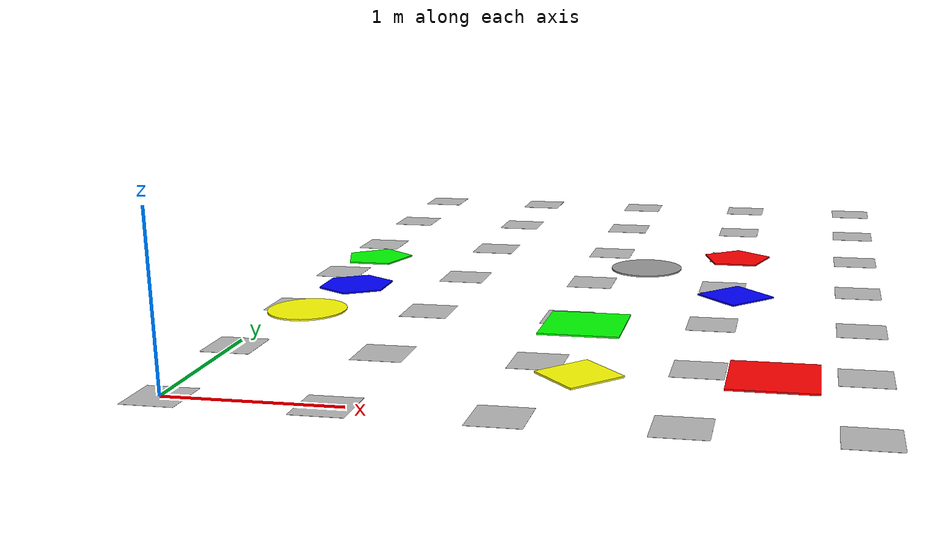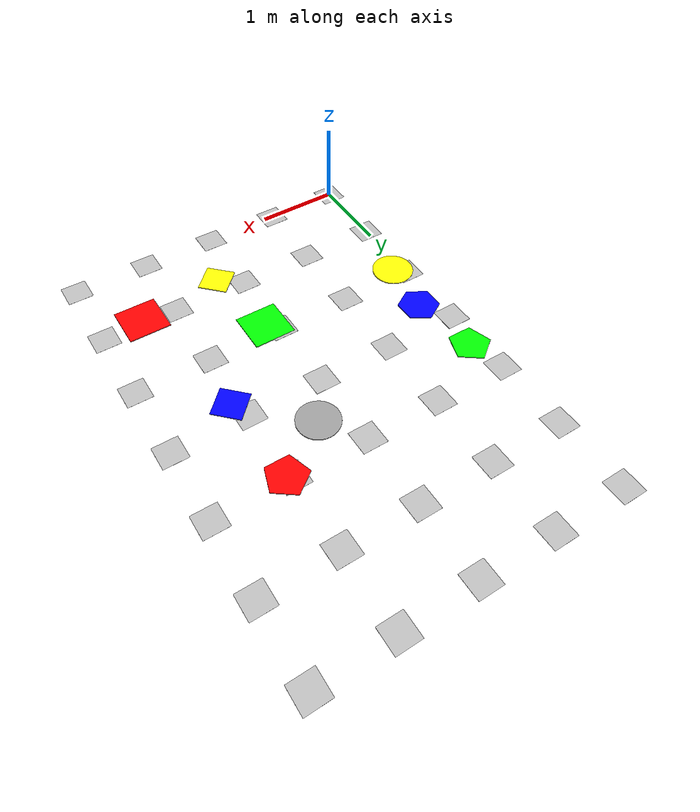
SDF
<sdf version="1.5">
 <world name="default">
  <include><uri>model://sun</uri></include>
  <include><uri>model://my_aruco</uri></include>
  <include><uri>model://Blue_hexagon</uri><pose>0.22 2.35 0.0 0 0 0</pose></include>
  <include><uri>model://Blue_rhombus</uri><pose>2.8 2.48 0.0 0 0 0</pose></include>
  <include><uri>model://Green_pentagon</uri><pose>0.1 3.16 0.0 0 0 0</pose></include>
  <include><uri>model://green_square</uri><pose>1.93 1.67 0.0 0 0 0</pose></include>
  <include><uri>model://Red_pentagon</uri><pose>2.74 3.56 0.0 0 0 0</pose></include>
  <include><uri>model://red_square</uri><pose>3.11 0.84 0.0 0 0 0</pose></include>
  <include><uri>model://White_circle</uri><pose>2.12 3.15 0.0 0 0 0</pose></include>
  <include><uri>model://Yellow_circle</uri><pose>0.13 1.69 0.0 0 0 0</pose></include>
  <include><uri>model://Yellow_rhombus</uri><pose>2.07 0.7 0.0 0 0 0</pose></include>
  <scene>
   <ambient>0.8 0.8 0.8 1</ambient>
   <background>0.8 0.9 1 1</background>
   <shadows>false</shadows>
   <grid>false</grid>
   <origin_visual>false</origin_visual>
  </scene>
  <physics name="default_physics" default="0" type="ode">
   <gravity>0 0 -9.8066</gravity>
   <ode>
    <solver>
     <type>quick</type>
     <iters>10</iters>
     <sor>1.3</sor>
     <use_dynamic_moi_rescaling>0</use_dynamic_moi_rescaling>
    </solver>
    <constraints>
     <cfm>0</cfm>
     <erp>0.2</erp>
     <contact_max_correcting_vel>100</contact_max_correcting_vel>
     <contact_surface_layer>0.001</contact_surface_layer>
    </constraints>
   </ode>
   <max_step_size>0.004</max_step_size>
   <real_time_factor>1</real_time_factor>
   <real_time_update_rate>250</real_time_update_rate>
   <magnetic_field>6.0e-6 2.3e-5 -4.2e-5</magnetic_field>
  </physics>
 </world>
</sdf>

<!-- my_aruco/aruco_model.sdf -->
<sdf version="1.5">
    <model name="aruco_2_99">
        <static>true</static>
        <link name="aruco_2_99_link">

<visual name="visual_marker_2_0">
    <pose>0.0 0.0 0.0 0.0 0.0 1.57079632679</pose>
    <cast_shadows>false</cast_shadows>
    <geometry>
        <box>
            <size>0.3 0.3 1e-3</size>
        </box>
    </geometry>
    <material>
        <script>
            <uri>model://my_aruco/materials/scripts</uri>
            <uri>model://my_aruco/materials/textures</uri>
            <name>aruco/marker_2_0</name>
        </script>
    </material>
</visual>

<visual name="visual_marker_2_1">
    <pose>0.9 0.0 0.0 0.0 0.0 1.57079632679</pose>
    <cast_shadows>false</cast_shadows>
    <geometry>
        <box>
            <size>0.3 0.3 1e-3</size>
        </box>
    </geometry>
    <material>
        <script>
            <uri>model://my_aruco/materials/scripts</uri>
            <uri>model://my_aruco/materials/textures</uri>
            <name>aruco/marker_2_1</name>
        </script>
    </material>
</visual>

<visual name="visual_marker_2_2">
    <pose>1.8 0.0 0.0 0.0 0.0 1.57079632679</pose>
    <cast_shadows>false</cast_shadows>
    <geometry>
        <box>
            <size>0.3 0.3 1e-3</size>
        </box>
    </geometry>
    <material>
        <script>
            <uri>model://my_aruco/materials/scripts</uri>
            <uri>model://my_aruco/materials/textures</uri>
            <name>aruco/marker_2_2</name>
        </script>
    </material>
</visual>

<visual name="visual_marker_2_3">
    <pose>2.7 0.0 0.0 0.0 0.0 1.57079632679</pose>
    <cast_shadows>false</cast_shadows>
    <geometry>
        <box>
            <size>0.3 0.3 1e-3</size>
        </box>
    </geometry>
    <material>
        <script>
            <uri>model://my_aruco/materials/scripts</uri>
            <uri>model://my_aruco/materials/textures</uri>
            <name>aruco/marker_2_3</name>
        </script>
    </material>
</visual>

<visual name="visual_marker_2_4">
    <pose>3.6 0.0 0.0 0.0 0.0 1.57079632679</pose>
    <cast_shadows>false</cast_shadows>
    <geometry>
        <box>
            <size>0.3 0.3 1e-3</size>
        </box>
    </geometry>
    <material>
        <script>
            <uri>model://my_aruco/materials/scripts</uri>
            <uri>model://my_aruco/materials/textures</uri>
            <name>aruco/marker_2_4</name>
        </script>
    </material>
</visual>

<visual name="visual_marker_2_5">
    <pose>0.0 0.9 0.0 0.0 0.0 1.57079632679</pose>
    <cast_shadows>false</cast_shadows>
    <geometry>
        <box>
            <size>0.3 0.3 1e-3</size>
        </box>
    </geometry>
    <material>
        <script>
            <uri>model://my_aruco/materials/scripts</uri>
            <uri>model://my_aruco/materials/textures</uri>
            <name>aruco/marker_2_5</name>
        </script>
    </material>
</visual>7

<visual name="visual_marker_2_6">
    <pose>0.9 0.9 0.0 0.0 0.0 1.57079632679</pose>
    <cast_shadows>false</cast_shadows>
    <geometry>
        <box>
            <size>0.3 0.3 1e-3</size>
        </box>
    </geometry>
    <material>
        <script>
            <uri>model://my_aruco/materials/scripts</uri>
            <uri>model://my_aruco/materials/textures</uri>
            <name>aruco/marker_2_6</name>
        </script>
    </material>
</visual>

<visual name="visual_marker_2_7">
    <pose>1.8 0.9 0.0 0.0 0.0 1.57079632679</pose>
    <cast_shadows>false</cast_shadows>
    <geometry>
        <box>
            <size>0.3 0.3 1e-3</size>
        </box>
    </geometry>
    <material>
        <script>
            <uri>model://my_aruco/materials/scripts</uri>
            <uri>model://my_aruco/materials/textures</uri>
            <name>aruco/marker_2_7</name>
        </script>
    </material>
</visual>

<visual name="visual_marker_2_8">
    <pose>2.7 0.9 0.0 0.0 0.0 1.57079632679</pose>
    <cast_shadows>false</cast_shadows>
    <geometry>
        <box>
            <size>0.3 0.3 1e-3</size>
        </box>
    </geometry>
    <material>
        <script>
            <uri>model://my_aruco/materials/scripts</uri>
            <uri>model://my_aruco/materials/textures</uri>
            <name>aruco/marker_2_8</name>
        </script>
    </material>
</visual>

<visual name="visual_marker_2_9">
    <pose>3.6 0.9 0.0 0.0 0.0 1.57079632679</pose>
    <cast_shadows>false</cast_shadows>
    <geometry>
        <box>
            <size>0.3 0.3 1e-3</size>
        </box>
    </geometry>
    <material>
        <script>
            <uri>model://my_aruco/materials/scripts</uri>
            <uri>model://my_aruco/materials/textures</uri>
            <name>aruco/marker_2_9</name>
        </script>
    </material>
</visual>

<visual name="visual_marker_2_10">
    <pose>0.0 1.8 0.0 0.0 0.0 1.57079632679</pose>
    <cast_shadows>false</cast_shadows>
    <geometry>
        <box>
            <size>0.3 0.3 1e-3</size>
        </box>
    </geometry>
    <material>
        <script>
            <uri>model://my_aruco/materials/scripts</uri>
            <uri>model://my_aruco/materials/textures</uri>
            <name>aruco/marker_2_10</name>
        </script>
    </material>
</visual>

<visual name="visual_marker_2_11">
    <pose>0.9 1.8 0.0 0.0 0.0 1.57079632679</pose>
    <cast_shadows>false</cast_shadows>
    <geometry>
        <box>
            <size>0.3 0.3 1e-3</size>
        </box>
    </geometry>
    <material>
        <script>
            <uri>model://my_aruco/materials/scripts</uri>
            <uri>model://my_aruco/materials/textures</uri>
            <name>aruco/marker_2_11</name>
        </script>
    </material>
</visual>

<visual name="visual_marker_2_12">
    <pose>1.8 1.8 0.0 0.0 0.0 1.57079632679</pose>
    <cast_shadows>false</cast_shadows>
    <geometry>
        <box>
            <size>0.3 0.3 1e-3</size>
        </box>
    </geometry>
    <material>
        <script>
            <uri>model://my_aruco/materials/scripts</uri>
            <uri>model://my_aruco/materials/textures</uri>
            <name>aruco/marker_2_12</name>
        </script>
    </material>
</visual>

<visual name="visual_marker_2_13">
    <pose>2.7 1.8 0.0 0.0 0.0 1.57079632679</pose>
    <cast_shadows>false</cast_shadows>
    <geometry>
        <box>
            <size>0.3 0.3 1e-3</size>
        </box>
    </geometry>
    <material>
        <script>
            <uri>model://my_aruco/materials/scripts</uri>
            <uri>model://my_aruco/materials/textures</uri>
            <name>aruco/marker_2_13</name>
        </script>
    </material>
</visual>

<visual name="visual_marker_2_14">
    <pose>3.6 1.8 0.0 0.0 0.0 1.57079632679</pose>
    <cast_shadows>false</cast_shadows>
    <geometry>
        <box>
            <size>0.3 0.3 1e-3</size>
        </box>
    </geometry>
    <material>
        <script>
            <uri>model://my_aruco/materials/scripts</uri>
            <uri>model://my_aruco/materials/textures</uri>
            <name>aruco/marker_2_14</name>
        </script>
    </material>
</visual>

<visual name="visual_marker_2_15">
    <pose>0.0 2.7 0.0 0.0 0.0 1.57079632679</pose>
    <cast_shadows>false</cast_shadows>
    <geometry>
        <box>
            <size>0.3 0.3 1e-3</size>
        </box>
    </geometry>
    <material>
        <script>
            <uri>model://my_aruco/materials/scripts</uri>
            <uri>model://my_aruco/materials/textures</uri>
            <name>aruco/marker_2_15</name>
        </script>
    </material>
</visual>

<visual name="visual_marker_2_16">
    <pose>0.9 2.7 0.0 0.0 0.0 1.57079632679</pose>
    <cast_shadows>false</cast_shadows>
    <geometry>
        <box>
            <size>0.3 0.3 1e-3</size>
        </box>
    </geometry>
    <material>
        <script>
            <uri>model://my_aruco/materials/scripts</uri>
            <uri>model://my_aruco/materials/textures</uri>
            <name>aruco/marker_2_16</name>
        </script>
    </material>
</visual>

<visual name="visual_marker_2_17">
    <pose>1.8 2.7 0.0 0.0 0.0 1.57079632679</pose>
    <cast_shadows>false</cast_shadows>
    <geometry>
        <box>
            <size>0.3 0.3 1e-3</size>
        </box>
    </geometry>
    <material>
        <script>
            <uri>model://my_aruco/materials/scripts</uri>
            <uri>model://my_aruco/materials/textures</uri>
            <name>aruco/marker_2_17</name>
        </script>
    </material>
</visual>

<visual name="visual_marker_2_18">
    <pose>2.7 2.7 0.0 0.0 0.0 1.57079632679</pose>
    <cast_shadows>false</cast_shadows>
    <geometry>
        <box>
            <size>0.3 0.3 1e-3</size>
        </box>
    </geometry>
    <material>
        <script>
            <uri>model://my_aruco/materials/scripts</uri>
            <uri>model://my_aruco/materials/textures</uri>
            <name>aruco/marker_2_18</name>
        </script>
    </material>
</visual>

<visual name="visual_marker_2_19">
    <pose>3.6 2.7 0.0 0.0 0.0 1.57079632679</pose>
    <cast_shadows>false</cast_shadows>
    <geometry>
        <box>
            <size>0.3 0.3 1e-3</size>
        </box>
    </geometry>
    <material>
        <script>
            <uri>model://my_aruco/materials/scripts</uri>
            <uri>model://my_aruco/materials/textures</uri>
            <name>aruco/marker_2_19</name>
        </script>
    </material>
</visual>

<visual name="visual_marker_2_20">
    <pose>0.0 3.6 0.0 0.0 0.0 1.57079632679</pose>
    <cast_shadows>false</cast_shadows>
    <geometry>
        <box>
            <size>0.3 0.3 1e-3</size>
        </box>
    </geometry>
    <material>
        <script>
            <uri>model://my_aruco/materials/scripts</uri>
            <uri>model://my_aruco/materials/textures</uri>
            <name>aruco/marker_2_20</name>
        </script>
    </material>
</visual>

<visual name="visual_marker_2_21">
    <pose>0.9 3.6 0.0 0.0 0.0 1.57079632679</pose>
    <cast_shadows>false</cast_shadows>
    <geometry>
        <box>
            <size>0.3 0.3 1e-3</size>
        </box>
    </geometry>
    <material>
        <script>
            <uri>model://my_aruco/materials/scripts</uri>
            <uri>model://my_aruco/materials/textures</uri>
            <name>aruco/marker_2_21</name>
        </script>
    </material>
</visual>

<visual name="visual_marker_2_22">
    <pose>1.8 3.6 0.0 0.0 0.0 1.57079632679</pose>
    <cast_shadows>false</cast_shadows>
    <geometry>
        <box>
            <size>0.3 0.3 1e-3</size>
        </box>
    </geometry>
    <material>
        <script>
            <uri>model://my_aruco/materials/scripts</uri>
            <uri>model://my_aruco/materials/textures</uri>
            <name>aruco/marker_2_22</name>
        </script>
    </material>
</visual>

<visual name="visual_marker_2_23">
    <pose>2.7 3.6 0.0 0.0 0.0 1.57079632679</pose>
    <cast_shadows>false</cast_shadows>
    <geometry>
        <box>
            <size>0.3 0.3 1e-3</size>
        </box>
    </geometry>
    <material>
        <script>
            <uri>model://my_aruco/materials/scripts</uri>
            <uri>model://my_aruco/materials/textures</uri>
            <name>aruco/marker_2_23</name>
        </script>
    </material>
</visual>

<visual name="visual_marker_2_24">
    <pose>3.6 3.6 0.0 0.0 0.0 1.57079632679</pose>
    <cast_shadows>false</cast_shadows>
    <geometry>
        <box>
            <size>0.3 0.3 1e-3</size>
        </box>
    </geometry>
    <material>
        <script>
            <uri>model://my_aruco/materials/scripts</uri>
            <uri>model://my_aruco/materials/textures</uri>
            <name>aruco/marker_2_24</name>
        </script>
    </material>
</visual>

<visual name="visual_marker_2_25">
    <pose>0.0 4.5 0.0 0.0 0.0 1.57079632679</pose>
    <cast_shadows>false</cast_shadows>
    <geometry>
        <box>
            <size>0.3 0.3 1e-3</size>
        </box>
    </geometry>
    <material>
        <script>
            <uri>model://my_aruco/materials/scripts</uri>
            <uri>model://my_aruco/materials/textures</uri>
            <name>aruco/marker_2_25</name>
        </script>
    </material>
</visual>

<visual name="visual_marker_2_26">
    <pose>0.9 4.5 0.0 0.0 0.0 1.57079632679</pose>
    <cast_shadows>false</cast_shadows>
    <geometry>
        <box>
            <size>0.3 0.3 1e-3</size>
        </box>
    </geometry>
    <material>
        <script>
            <uri>model://my_aruco/materials/scripts</uri>
            <uri>model://my_aruco/materials/textures</uri>
            <name>aruco/marker_2_26</name>
        </script>
    </material>
</visual>

<visual name="visual_marker_2_27">
    <pose>1.8 4.5 0.0 0.0 0.0 1.57079632679</pose>
    <cast_shadows>false</cast_shadows>
    <geometry>
        <box>
            <size>0.3 0.3 1e-3</size>
        </box>
    </geometry>
    <material>
        <script>
            <uri>model://my_aruco/materials/scripts</uri>
            <uri>model://my_aruco/materials/textures</uri>
            <name>aruco/marker_2_27</name>
        </script>
    </material>
</visual>

<visual name="visual_marker_2_28">
    <pose>2.7 4.5 0.0 0.0 0.0 1.57079632679</pose>
    <cast_shadows>false</cast_shadows>
    <geometry>
        <box>
            <size>0.3 0.3 1e-3</size>
        </box>
    </geometry>
    <material>
        <script>
            <uri>model://my_aruco/materials/scripts</uri>
            <uri>model://my_aruco/materials/textures</uri>
            <name>aruco/marker_2_28</name>
        </script>
    </material>
</visual>

<visual name="visual_marker_2_29">
    <pose>3.6 4.5 0.0 0.0 0.0 1.57079632679</pose>
    <cast_shadows>false</cast_shadows>
    <geometry>
        <box>
            <size>0.3 0.3 1e-3</size>
        </box>
    </geometry>
    <material>
        <script>
            <uri>model://my_aruco/materials/scripts</uri>
            <uri>model://my_aruco/materials/textures</uri>
            <name>aruco/marker_2_29</name>
        </script>
    </material>
</visual>

<visual name="visual_marker_2_30">
    <pose>0.0 5.4 0.0 0.0 0.0 1.57079632679</pose>
    <cast_shadows>false</cast_shadows>
    <geometry>
        <box>
            <size>0.3 0.3 1e-3</size>
        </box>
    </geometry>
    <material>
        <script>
            <uri>model://my_aruco/materials/scripts</uri>
            <uri>model://my_aruco/materials/textures</uri>
            <name>aruco/marker_2_30</name>
        </script>
    </material>
</visual>

<visual name="visual_marker_2_31">
    <pose>0.9 5.4 0.0 0.0 0.0 1.57079632679</pose>
    <cast_shadows>false</cast_shadows>
    <geometry>
        <box>
            <size>0.3 0.3 1e-3</size>
        </box>
    </geometry>
    <material>
        <script>
            <uri>model://my_aruco/materials/scripts</uri>
            <uri>model://my_aruco/materials/textures</uri>
            <name>aruco/marker_2_31</name>
        </script>
    </material>
</visual>

<visual name="visual_marker_2_32">
    <pose>1.8 5.4 0.0 0.0 0.0 1.57079632679</pose>
    <cast_shadows>false</cast_shadows>
    <geometry>
        <box>
            <size>0.3 0.3 1e-3</size>
        </box>
    </geometry>
    <material>
        <script>
            <uri>model://my_aruco/materials/scripts</uri>
            <uri>model://my_aruco/materials/textures</uri>
            <name>aruco/marker_2_32</name>
        </script>
    </material>
</visual>

<visual name="visual_marker_2_33">
    <pose>2.7 5.4 0.0 0.0 0.0 1.57079632679</pose>
    <cast_shadows>false</cast_shadows>
    <geometry>
        <box>
            <size>0.3 0.3 1e-3</size>
        </box>
    </geometry>
    <material>
        <script>
            <uri>model://my_aruco/materials/scripts</uri>
            <uri>model://my_aruco/materials/textures</uri>
            <name>aruco/marker_2_33</name>
        </script>
    </material>
</visual>

<visual name="visual_marker_2_34">
    <pose>3.6 5.4 0.0 0.0 0.0 1.57079632679</pose>
    <cast_shadows>false</cast_shadows>
    <geometry>
        <box>
            <size>0.3 0.3 1e-3</size>
        </box>
    </geometry>
    <material>
        <script>
            <uri>model://my_aruco/materials/scripts</uri>
            <uri>model://my_aruco/materials/textures</uri>
            <name>aruco/marker_2_34</name>
        </script>
    </material>
</visual>

        </link>
    </model>
</sdf>

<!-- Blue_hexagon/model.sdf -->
<sdf version='1.7'>
  <model name='Blue_hexagon'>
    <link name='link_3'>
      <inertial>
        <mass>1</mass>
        <inertia>
          <ixx>0.166667</ixx>
          <ixy>0</ixy>
          <ixz>0</ixz>
          <iyy>0.166667</iyy>
          <iyz>0</iyz>
          <izz>0.166667</izz>
        </inertia>
        <pose>0 0 0 0 -0 0</pose>
      </inertial>
      <pose>0 0 0 0 -0 0</pose>
      <gravity>1</gravity>
      <self_collide>0</self_collide>
      <kinematic>0</kinematic>
      <enable_wind>0</enable_wind>
      <visual name='visual'>
        <pose>0 0 0 0 -0 0</pose>
        <geometry>
          <mesh>
            <uri>/home/clover/catkin_ws/src/clover/clover_simulation/models/DAE_data/hex.dae</uri>
            <scale>1 1 1</scale>
          </mesh>
        </geometry>
        <material>
          <lighting>1</lighting>
          <script>
            <uri>file://media/materials/scripts/gazebo.material</uri>
            <name>Gazebo/Grey</name>
          </script>
          <shader type='pixel'>
            <normal_map>__default__</normal_map>
          </shader>
          <diffuse>0 0 1 1</diffuse>
          <ambient>0 0 1 1</ambient>
          <specular>0 0 0 1</specular>
          <emissive>0 0 0 1</emissive>
        </material>
        <transparency>0</transparency>
        <cast_shadows>1</cast_shadows>
      </visual>
      <collision name='collision'>
        <laser_retro>0</laser_retro>
        <max_contacts>10</max_contacts>
        <pose>0 0 0 0 -0 0</pose>
        <geometry>
          <mesh>
            <uri>/home/clover/catkin_ws/src/clover/clover_simulation/models/DAE_data/hex.dae</uri>
            <scale>1 1 1</scale>
          </mesh>
        </geometry>
        <surface>
          <friction>
            <ode>
              <mu>1</mu>
              <mu2>1</mu2>
              <fdir1>0 0 0</fdir1>
              <slip1>0</slip1>
              <slip2>0</slip2>
            </ode>
            <torsional>
              <coefficient>1</coefficient>
              <patch_radius>0</patch_radius>
              <surface_radius>0</surface_radius>
              <use_patch_radius>1</use_patch_radius>
              <ode>
                <slip>0</slip>
              </ode>
            </torsional>
          </friction>
          <bounce>
            <restitution_coefficient>0</restitution_coefficient>
            <threshold>1e+06</threshold>
          </bounce>
          <contact>
            <collide_without_contact>0</collide_without_contact>
            <collide_without_contact_bitmask>1</collide_without_contact_bitmask>
            <collide_bitmask>1</collide_bitmask>
            <ode>
              <soft_cfm>0</soft_cfm>
              <soft_erp>0.2</soft_erp>
              <kp>1e+13</kp>
              <kd>1</kd>
              <max_vel>0.01</max_vel>
              <min_depth>0</min_depth>
            </ode>
            <bullet>
              <split_impulse>1</split_impulse>
              <split_impulse_penetration_threshold>-0.01</split_impulse_penetration_threshold>
              <soft_cfm>0</soft_cfm>
              <soft_erp>0.2</soft_erp>
              <kp>1e+13</kp>
              <kd>1</kd>
            </bullet>
          </contact>
        </surface>
      </collision>
    </link>
    <static>1</static>
    <allow_auto_disable>1</allow_auto_disable>
  </model>
</sdf>

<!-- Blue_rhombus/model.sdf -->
<sdf version='1.7'>
  <model name='Blue_rhombus'>
    <link name='link_6'>
      <inertial>
        <mass>1</mass>
        <inertia>
          <ixx>0.166667</ixx>
          <ixy>0</ixy>
          <ixz>0</ixz>
          <iyy>0.166667</iyy>
          <iyz>0</iyz>
          <izz>0.166667</izz>
        </inertia>
        <pose>0 0 0 0 -0 0</pose>
      </inertial>
      <pose>0 0 0 0 -0 0</pose>
      <gravity>1</gravity>
      <self_collide>0</self_collide>
      <kinematic>0</kinematic>
      <enable_wind>0</enable_wind>
      <visual name='visual'>
        <pose>0 0 0 0 -0 0</pose>
        <geometry>
          <mesh>
            <uri>/home/clover/catkin_ws/src/clover/clover_simulation/models/DAE_data/rhombus.dae</uri>
            <scale>1 1 1</scale>
          </mesh>
        </geometry>
        <material>
          <lighting>1</lighting>
          <script>
            <uri>file://media/materials/scripts/gazebo.material</uri>
            <name>Gazebo/Grey</name>
          </script>
          <shader type='pixel'>
            <normal_map>__default__</normal_map>
          </shader>
          <diffuse>0 0 1 1</diffuse>
          <ambient>0 0 1 1</ambient>
          <specular>0 0 0 1</specular>
          <emissive>0 0 0 1</emissive>
        </material>
        <transparency>0</transparency>
        <cast_shadows>1</cast_shadows>
      </visual>
      <collision name='collision'>
        <laser_retro>0</laser_retro>
        <max_contacts>10</max_contacts>
        <pose>0 0 0 0 -0 0</pose>
        <geometry>
          <mesh>
            <uri>/home/clover/catkin_ws/src/clover/clover_simulation/models/DAE_data/rhombus.dae</uri>
            <scale>1 1 1</scale>
          </mesh>
        </geometry>
        <surface>
          <friction>
            <ode>
              <mu>1</mu>
              <mu2>1</mu2>
              <fdir1>0 0 0</fdir1>
              <slip1>0</slip1>
              <slip2>0</slip2>
            </ode>
            <torsional>
              <coefficient>1</coefficient>
              <patch_radius>0</patch_radius>
              <surface_radius>0</surface_radius>
              <use_patch_radius>1</use_patch_radius>
              <ode>
                <slip>0</slip>
              </ode>
            </torsional>
          </friction>
          <bounce>
            <restitution_coefficient>0</restitution_coefficient>
            <threshold>1e+06</threshold>
          </bounce>
          <contact>
            <collide_without_contact>0</collide_without_contact>
            <collide_without_contact_bitmask>1</collide_without_contact_bitmask>
            <collide_bitmask>1</collide_bitmask>
            <ode>
              <soft_cfm>0</soft_cfm>
              <soft_erp>0.2</soft_erp>
              <kp>1e+13</kp>
              <kd>1</kd>
              <max_vel>0.01</max_vel>
              <min_depth>0</min_depth>
            </ode>
            <bullet>
              <split_impulse>1</split_impulse>
              <split_impulse_penetration_threshold>-0.01</split_impulse_penetration_threshold>
              <soft_cfm>0</soft_cfm>
              <soft_erp>0.2</soft_erp>
              <kp>1e+13</kp>
              <kd>1</kd>
            </bullet>
          </contact>
        </surface>
      </collision>
    </link>
    <static>1</static>
    <allow_auto_disable>1</allow_auto_disable>
  </model>
</sdf>

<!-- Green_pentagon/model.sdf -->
<sdf version='1.7'>
  <model name='Green_pentagon'>
    <link name='link_0'>
      <inertial>
        <mass>1</mass>
        <inertia>
          <ixx>0.166667</ixx>
          <ixy>0</ixy>
          <ixz>0</ixz>
          <iyy>0.166667</iyy>
          <iyz>0</iyz>
          <izz>0.166667</izz>
        </inertia>
        <pose>0 0 0 0 -0 0</pose>
      </inertial>
      <pose>0 0 0 0 -0 0</pose>
      <gravity>1</gravity>
      <self_collide>0</self_collide>
      <kinematic>0</kinematic>
      <enable_wind>0</enable_wind>
      <visual name='visual'>
        <pose>0 0 0 0 -0 0</pose>
        <geometry>
          <mesh>
            <uri>/home/clover/catkin_ws/src/clover/clover_simulation/models/DAE_data/pent.dae</uri>
            <scale>1 1 1</scale>
          </mesh>
        </geometry>
        <material>
          <lighting>1</lighting>
          <script>
            <uri>file://media/materials/scripts/gazebo.material</uri>
            <name>Gazebo/Grey</name>
          </script>
          <shader type='pixel'>
            <normal_map>__default__</normal_map>
          </shader>
          <ambient>0 1 0 1</ambient>
          <diffuse>0 1 0 1</diffuse>
          <specular>0 0 0 1</specular>
          <emissive>0 0 0 1</emissive>
        </material>
        <transparency>0</transparency>
        <cast_shadows>1</cast_shadows>
      </visual>
      <collision name='collision'>
        <laser_retro>0</laser_retro>
        <max_contacts>10</max_contacts>
        <pose>0 0 0 0 -0 0</pose>
        <geometry>
          <mesh>
            <uri>./home/clover/catkin_ws/src/clover/clover_simulation/models/DAE_data/pent.dae</uri>
            <scale>1 1 1</scale>
          </mesh>
        </geometry>
        <surface>
          <friction>
            <ode>
              <mu>1</mu>
              <mu2>1</mu2>
              <fdir1>0 0 0</fdir1>
              <slip1>0</slip1>
              <slip2>0</slip2>
            </ode>
            <torsional>
              <coefficient>1</coefficient>
              <patch_radius>0</patch_radius>
              <surface_radius>0</surface_radius>
              <use_patch_radius>1</use_patch_radius>
              <ode>
                <slip>0</slip>
              </ode>
            </torsional>
          </friction>
          <bounce>
            <restitution_coefficient>0</restitution_coefficient>
            <threshold>1e+06</threshold>
          </bounce>
          <contact>
            <collide_without_contact>0</collide_without_contact>
            <collide_without_contact_bitmask>1</collide_without_contact_bitmask>
            <collide_bitmask>1</collide_bitmask>
            <ode>
              <soft_cfm>0</soft_cfm>
              <soft_erp>0.2</soft_erp>
              <kp>1e+13</kp>
              <kd>1</kd>
              <max_vel>0.01</max_vel>
              <min_depth>0</min_depth>
            </ode>
            <bullet>
              <split_impulse>1</split_impulse>
              <split_impulse_penetration_threshold>-0.01</split_impulse_penetration_threshold>
              <soft_cfm>0</soft_cfm>
              <soft_erp>0.2</soft_erp>
              <kp>1e+13</kp>
              <kd>1</kd>
            </bullet>
          </contact>
        </surface>
      </collision>
    </link>
    <static>1</static>
    <allow_auto_disable>1</allow_auto_disable>
  </model>
</sdf>

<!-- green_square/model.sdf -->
<sdf version='1.7'>
  <model name='green_square'>
    <link name='link'>
      <inertial>
        <mass>1</mass>
        <inertia>
          <ixx>0.166667</ixx>
          <ixy>0</ixy>
          <ixz>0</ixz>
          <iyy>0.166667</iyy>
          <iyz>0</iyz>
          <izz>0.166667</izz>
        </inertia>
        <pose>0 0 0 0 -0 0</pose>
      </inertial>
      <self_collide>0</self_collide>
      <enable_wind>0</enable_wind>
      <kinematic>0</kinematic>
      <pose>0 0 0 0 -0 0</pose>
      <gravity>1</gravity>
      <visual name='visual'>
        <geometry>
          <box>
            <size>0.5 0.5 0.01</size>
          </box>
        </geometry>
        <material>
          <script>
            <name>Gazebo/Grey</name>
            <uri>file://media/materials/scripts/gazebo.material</uri>
          </script>
          <shader type='pixel'>
            <normal_map>__default__</normal_map>
          </shader>
          <diffuse>0 1 0 1</diffuse>
          <ambient>0 1 0 1</ambient>
          <specular>0 0 0 1</specular>
          <emissive>0 0 0 1</emissive>
        </material>
        <pose>0 0 0 0 -0 0</pose>
        <transparency>0</transparency>
        <cast_shadows>1</cast_shadows>
      </visual>
      <collision name='collision'>
        <laser_retro>0</laser_retro>
        <max_contacts>10</max_contacts>
        <pose>0 0 0 0 -0 0</pose>
        <geometry>
          <box>
            <size>0.5 0.5 0.01</size>
          </box>
        </geometry>
        <surface>
          <friction>
            <ode>
              <mu>1</mu>
              <mu2>1</mu2>
              <fdir1>0 0 0</fdir1>
              <slip1>0</slip1>
              <slip2>0</slip2>
            </ode>
            <torsional>
              <coefficient>1</coefficient>
              <patch_radius>0</patch_radius>
              <surface_radius>0</surface_radius>
              <use_patch_radius>1</use_patch_radius>
              <ode>
                <slip>0</slip>
              </ode>
            </torsional>
          </friction>
          <bounce>
            <restitution_coefficient>0</restitution_coefficient>
            <threshold>1e+06</threshold>
          </bounce>
          <contact>
            <collide_without_contact>0</collide_without_contact>
            <collide_without_contact_bitmask>1</collide_without_contact_bitmask>
            <collide_bitmask>1</collide_bitmask>
            <ode>
              <soft_cfm>0</soft_cfm>
              <soft_erp>0.2</soft_erp>
              <kp>1e+13</kp>
              <kd>1</kd>
              <max_vel>0.01</max_vel>
              <min_depth>0</min_depth>
            </ode>
            <bullet>
              <split_impulse>1</split_impulse>
              <split_impulse_penetration_threshold>-0.01</split_impulse_penetration_threshold>
              <soft_cfm>0</soft_cfm>
              <soft_erp>0.2</soft_erp>
              <kp>1e+13</kp>
              <kd>1</kd>
            </bullet>
          </contact>
        </surface>
      </collision>
    </link>
    <static>0</static>
    <allow_auto_disable>1</allow_auto_disable>
  </model>
</sdf>

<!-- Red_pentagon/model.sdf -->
<sdf version='1.7'>
  <model name='Red_pentagon'>
    <link name='link_2'>
      <inertial>
        <mass>1</mass>
        <inertia>
          <ixx>0.166667</ixx>
          <ixy>0</ixy>
          <ixz>0</ixz>
          <iyy>0.166667</iyy>
          <iyz>0</iyz>
          <izz>0.166667</izz>
        </inertia>
        <pose>0 0 0 0 -0 0</pose>
      </inertial>
      <pose>0 0 0 0 -0 0</pose>
      <gravity>1</gravity>
      <self_collide>0</self_collide>
      <kinematic>0</kinematic>
      <enable_wind>0</enable_wind>
      <visual name='visual'>
        <pose>0 0 0 0 -0 0</pose>
        <geometry>
          <mesh>
            <uri>/home/clover/catkin_ws/src/clover/clover_simulation/models/DAE_data/pent.dae</uri>
            <scale>1 1 1</scale>
          </mesh>
        </geometry>
        <material>
          <lighting>1</lighting>
          <script>
            <uri>file://media/materials/scripts/gazebo.material</uri>
            <name>Gazebo/Grey</name>
          </script>
          <shader type='pixel'>
            <normal_map>__default__</normal_map>
          </shader>
          <diffuse>1 0 0 1</diffuse>
          <ambient>1 0 0 1</ambient>
          <specular>0 0 0 1</specular>
          <emissive>0 0 0 1</emissive>
        </material>
        <transparency>0</transparency>
        <cast_shadows>1</cast_shadows>
      </visual>
      <collision name='collision'>
        <laser_retro>0</laser_retro>
        <max_contacts>10</max_contacts>
        <pose>0 0 0 0 -0 0</pose>
        <geometry>
          <mesh>
            <uri>/home/clover/catkin_ws/src/clover/clover_simulation/models/DAE_data/pent.dae</uri>
            <scale>1 1 1</scale>
          </mesh>
        </geometry>
        <surface>
          <friction>
            <ode>
              <mu>1</mu>
              <mu2>1</mu2>
              <fdir1>0 0 0</fdir1>
              <slip1>0</slip1>
              <slip2>0</slip2>
            </ode>
            <torsional>
              <coefficient>1</coefficient>
              <patch_radius>0</patch_radius>
              <surface_radius>0</surface_radius>
              <use_patch_radius>1</use_patch_radius>
              <ode>
                <slip>0</slip>
              </ode>
            </torsional>
          </friction>
          <bounce>
            <restitution_coefficient>0</restitution_coefficient>
            <threshold>1e+06</threshold>
          </bounce>
          <contact>
            <collide_without_contact>0</collide_without_contact>
            <collide_without_contact_bitmask>1</collide_without_contact_bitmask>
            <collide_bitmask>1</collide_bitmask>
            <ode>
              <soft_cfm>0</soft_cfm>
              <soft_erp>0.2</soft_erp>
              <kp>1e+13</kp>
              <kd>1</kd>
              <max_vel>0.01</max_vel>
              <min_depth>0</min_depth>
            </ode>
            <bullet>
              <split_impulse>1</split_impulse>
              <split_impulse_penetration_threshold>-0.01</split_impulse_penetration_threshold>
              <soft_cfm>0</soft_cfm>
              <soft_erp>0.2</soft_erp>
              <kp>1e+13</kp>
              <kd>1</kd>
            </bullet>
          </contact>
        </surface>
      </collision>
    </link>
    <static>1</static>
    <allow_auto_disable>1</allow_auto_disable>
  </model>
</sdf>

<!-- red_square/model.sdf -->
<sdf version='1.7'>
  <model name='red_square'>
    <link name='link'>
      <inertial>
        <mass>1</mass>
        <inertia>
          <ixx>0.166667</ixx>
          <ixy>0</ixy>
          <ixz>0</ixz>
          <iyy>0.166667</iyy>
          <iyz>0</iyz>
          <izz>0.166667</izz>
        </inertia>
        <pose>0 0 0 0 -0 0</pose>
      </inertial>
      <self_collide>0</self_collide>
      <enable_wind>0</enable_wind>
      <kinematic>0</kinematic>
      <pose>0 0 0 0 -0 0</pose>
      <gravity>1</gravity>
      <visual name='visual'>
        <geometry>
          <box>
            <size>0.5 0.5 0.01</size>
          </box>
        </geometry>
        <material>
          <script>
            <name>Gazebo/Grey</name>
            <uri>file://media/materials/scripts/gazebo.material</uri>
          </script>
          <shader type='pixel'>
            <normal_map>__default__</normal_map>
          </shader>
          <diffuse>1 0 0 1</diffuse>
          <ambient>1 0 0 1</ambient>
          <specular>0 0 0 1</specular>
          <emissive>0 0 0 1</emissive>
        </material>
        <pose>0 0 0 0 -0 0</pose>
        <transparency>0</transparency>
        <cast_shadows>1</cast_shadows>
      </visual>
      <collision name='collision'>
        <laser_retro>0</laser_retro>
        <max_contacts>10</max_contacts>
        <pose>0 0 0 0 -0 0</pose>
        <geometry>
          <box>
            <size>0.5 0.5 0.01</size>
          </box>
        </geometry>
        <surface>
          <friction>
            <ode>
              <mu>1</mu>
              <mu2>1</mu2>
              <fdir1>0 0 0</fdir1>
              <slip1>0</slip1>
              <slip2>0</slip2>
            </ode>
            <torsional>
              <coefficient>1</coefficient>
              <patch_radius>0</patch_radius>
              <surface_radius>0</surface_radius>
              <use_patch_radius>1</use_patch_radius>
              <ode>
                <slip>0</slip>
              </ode>
            </torsional>
          </friction>
          <bounce>
            <restitution_coefficient>0</restitution_coefficient>
            <threshold>1e+06</threshold>
          </bounce>
          <contact>
            <collide_without_contact>0</collide_without_contact>
            <collide_without_contact_bitmask>1</collide_without_contact_bitmask>
            <collide_bitmask>1</collide_bitmask>
            <ode>
              <soft_cfm>0</soft_cfm>
              <soft_erp>0.2</soft_erp>
              <kp>1e+13</kp>
              <kd>1</kd>
              <max_vel>0.01</max_vel>
              <min_depth>0</min_depth>
            </ode>
            <bullet>
              <split_impulse>1</split_impulse>
              <split_impulse_penetration_threshold>-0.01</split_impulse_penetration_threshold>
              <soft_cfm>0</soft_cfm>
              <soft_erp>0.2</soft_erp>
              <kp>1e+13</kp>
              <kd>1</kd>
            </bullet>
          </contact>
        </surface>
      </collision>
    </link>
    <static>0</static>
    <allow_auto_disable>1</allow_auto_disable>
  </model>
</sdf>

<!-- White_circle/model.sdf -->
<sdf version='1.7'>
  <model name='White_circle'>
    <link name='link_4'>
      <inertial>
        <mass>1</mass>
        <inertia>
          <ixx>0.166667</ixx>
          <ixy>0</ixy>
          <ixz>0</ixz>
          <iyy>0.166667</iyy>
          <iyz>0</iyz>
          <izz>0.166667</izz>
        </inertia>
        <pose>0 0 0 0 -0 0</pose>
      </inertial>
      <pose>0 0 0 0 -0 0</pose>
      <gravity>1</gravity>
      <self_collide>0</self_collide>
      <kinematic>0</kinematic>
      <enable_wind>0</enable_wind>
      <visual name='visual'>
        <pose>0 0 0 0 -0 0</pose>
        <geometry>
          <mesh>
            <uri>/home/clover/catkin_ws/src/clover/clover_simulation/models/DAE_data/circ.dae</uri>
            <scale>1 1 1</scale>
          </mesh>
        </geometry>
        <material>
          <lighting>1</lighting>
          <script>
            <uri>file://media/materials/scripts/gazebo.material</uri>
            <name>Gazebo/Grey</name>
          </script>
          <shader type='pixel'>
            <normal_map>__default__</normal_map>
          </shader>
          <diffuse>1 1 1 1</diffuse>
          <ambient>1 1 1 1</ambient>
          <specular>0 0 0 1</specular>
          <emissive>0 0 0 1</emissive>
        </material>
        <transparency>0</transparency>
        <cast_shadows>1</cast_shadows>
      </visual>
      <collision name='collision'>
        <laser_retro>0</laser_retro>
        <max_contacts>10</max_contacts>
        <pose>0 0 0 0 -0 0</pose>
        <geometry>
          <mesh>
            <uri>/home/clover/catkin_ws/src/clover/clover_simulation/models/DAE_data/circ.dae</uri>
            <scale>1 1 1</scale>
          </mesh>
        </geometry>
        <surface>
          <friction>
            <ode>
              <mu>1</mu>
              <mu2>1</mu2>
              <fdir1>0 0 0</fdir1>
              <slip1>0</slip1>
              <slip2>0</slip2>
            </ode>
            <torsional>
              <coefficient>1</coefficient>
              <patch_radius>0</patch_radius>
              <surface_radius>0</surface_radius>
              <use_patch_radius>1</use_patch_radius>
              <ode>
                <slip>0</slip>
              </ode>
            </torsional>
          </friction>
          <bounce>
            <restitution_coefficient>0</restitution_coefficient>
            <threshold>1e+06</threshold>
          </bounce>
          <contact>
            <collide_without_contact>0</collide_without_contact>
            <collide_without_contact_bitmask>1</collide_without_contact_bitmask>
            <collide_bitmask>1</collide_bitmask>
            <ode>
              <soft_cfm>0</soft_cfm>
              <soft_erp>0.2</soft_erp>
              <kp>1e+13</kp>
              <kd>1</kd>
              <max_vel>0.01</max_vel>
              <min_depth>0</min_depth>
            </ode>
            <bullet>
              <split_impulse>1</split_impulse>
              <split_impulse_penetration_threshold>-0.01</split_impulse_penetration_threshold>
              <soft_cfm>0</soft_cfm>
              <soft_erp>0.2</soft_erp>
              <kp>1e+13</kp>
              <kd>1</kd>
            </bullet>
          </contact>
        </surface>
      </collision>
    </link>
    <static>1</static>
    <allow_auto_disable>1</allow_auto_disable>
  </model>
</sdf>

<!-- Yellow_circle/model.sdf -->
<sdf version='1.7'>
  <model name='Yellow_circle'>
    <link name='link_5'>
      <inertial>
        <mass>1</mass>
        <inertia>
          <ixx>0.166667</ixx>
          <ixy>0</ixy>
          <ixz>0</ixz>
          <iyy>0.166667</iyy>
          <iyz>0</iyz>
          <izz>0.166667</izz>
        </inertia>
        <pose>0 0 0 0 -0 0</pose>
      </inertial>
      <pose>0 0 0 0 -0 0</pose>
      <gravity>1</gravity>
      <self_collide>0</self_collide>
      <kinematic>0</kinematic>
      <enable_wind>0</enable_wind>
      <visual name='visual'>
        <pose>0 0 0 0 -0 0</pose>
        <geometry>
          <mesh>
            <uri>/home/clover/catkin_ws/src/clover/clover_simulation/models/DAE_data/circ.dae</uri>
            <scale>1 1 1</scale>
          </mesh>
        </geometry>
        <material>
          <lighting>1</lighting>
          <script>
            <uri>file://media/materials/scripts/gazebo.material</uri>
            <name>Gazebo/Grey</name>
          </script>
          <shader type='pixel'>
            <normal_map>__default__</normal_map>
          </shader>
          <diffuse>1 1 0 1</diffuse>
          <ambient>1 1 0 1</ambient>
          <specular>0 0 0 1</specular>
          <emissive>0 0 0 1</emissive>
        </material>
        <transparency>0</transparency>
        <cast_shadows>1</cast_shadows>
      </visual>
      <collision name='collision'>
        <laser_retro>0</laser_retro>
        <max_contacts>10</max_contacts>
        <pose>0 0 0 0 -0 0</pose>
        <geometry>
          <mesh>
            <uri>/home/clover/catkin_ws/src/clover/clover_simulation/models/DAE_data/circ.dae</uri>
            <scale>1 1 1</scale>
          </mesh>
        </geometry>
        <surface>
          <friction>
            <ode>
              <mu>1</mu>
              <mu2>1</mu2>
              <fdir1>0 0 0</fdir1>
              <slip1>0</slip1>
              <slip2>0</slip2>
            </ode>
            <torsional>
              <coefficient>1</coefficient>
              <patch_radius>0</patch_radius>
              <surface_radius>0</surface_radius>
              <use_patch_radius>1</use_patch_radius>
              <ode>
                <slip>0</slip>
              </ode>
            </torsional>
          </friction>
          <bounce>
            <restitution_coefficient>0</restitution_coefficient>
            <threshold>1e+06</threshold>
          </bounce>
          <contact>
            <collide_without_contact>0</collide_without_contact>
            <collide_without_contact_bitmask>1</collide_without_contact_bitmask>
            <collide_bitmask>1</collide_bitmask>
            <ode>
              <soft_cfm>0</soft_cfm>
              <soft_erp>0.2</soft_erp>
              <kp>1e+13</kp>
              <kd>1</kd>
              <max_vel>0.01</max_vel>
              <min_depth>0</min_depth>
            </ode>
            <bullet>
              <split_impulse>1</split_impulse>
              <split_impulse_penetration_threshold>-0.01</split_impulse_penetration_threshold>
              <soft_cfm>0</soft_cfm>
              <soft_erp>0.2</soft_erp>
              <kp>1e+13</kp>
              <kd>1</kd>
            </bullet>
          </contact>
        </surface>
      </collision>
    </link>
    <static>1</static>
    <allow_auto_disable>1</allow_auto_disable>
  </model>
</sdf>

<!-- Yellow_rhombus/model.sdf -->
<sdf version='1.7'>
  <model name='Yellow_rhombus'>
    <link name='link_8'>
      <inertial>
        <mass>1</mass>
        <inertia>
          <ixx>0.166667</ixx>
          <ixy>0</ixy>
          <ixz>0</ixz>
          <iyy>0.166667</iyy>
          <iyz>0</iyz>
          <izz>0.166667</izz>
        </inertia>
        <pose>0 0 0 0 -0 0</pose>
      </inertial>
      <pose>0 0 0 0 -0 0</pose>
      <gravity>1</gravity>
      <self_collide>0</self_collide>
      <kinematic>0</kinematic>
      <enable_wind>0</enable_wind>
      <visual name='visual'>
        <pose>0 0 0 0 -0 0</pose>
        <geometry>
          <mesh>
            <uri>/home/clover/catkin_ws/src/clover/clover_simulation/models/DAE_data/rhombus.dae</uri>
            <scale>1 1 1</scale>
          </mesh>
        </geometry>
        <material>
          <lighting>1</lighting>
          <script>
            <uri>file://media/materials/scripts/gazebo.material</uri>
            <name>Gazebo/Grey</name>
          </script>
          <shader type='pixel'>
            <normal_map>__default__</normal_map>
          </shader>
          <diffuse>1 1 0 1</diffuse>
          <ambient>1 1 0 1</ambient>
          <specular>0 0 0 1</specular>
          <emissive>0 0 0 1</emissive>
        </material>
        <transparency>0</transparency>
        <cast_shadows>1</cast_shadows>
      </visual>
      <collision name='collision'>
        <laser_retro>0</laser_retro>
        <max_contacts>10</max_contacts>
        <pose>0 0 0 0 -0 0</pose>
        <geometry>
          <mesh>
            <uri>/home/clover/catkin_ws/src/clover/clover_simulation/models/DAE_data/rhombus.dae</uri>
            <scale>1 1 1</scale>
          </mesh>
        </geometry>
        <surface>
          <friction>
            <ode>
              <mu>1</mu>
              <mu2>1</mu2>
              <fdir1>0 0 0</fdir1>
              <slip1>0</slip1>
              <slip2>0</slip2>
            </ode>
            <torsional>
              <coefficient>1</coefficient>
              <patch_radius>0</patch_radius>
              <surface_radius>0</surface_radius>
              <use_patch_radius>1</use_patch_radius>
              <ode>
                <slip>0</slip>
              </ode>
            </torsional>
          </friction>
          <bounce>
            <restitution_coefficient>0</restitution_coefficient>
            <threshold>1e+06</threshold>
          </bounce>
          <contact>
            <collide_without_contact>0</collide_without_contact>
            <collide_without_contact_bitmask>1</collide_without_contact_bitmask>
            <collide_bitmask>1</collide_bitmask>
            <ode>
              <soft_cfm>0</soft_cfm>
              <soft_erp>0.2</soft_erp>
              <kp>1e+13</kp>
              <kd>1</kd>
              <max_vel>0.01</max_vel>
              <min_depth>0</min_depth>
            </ode>
            <bullet>
              <split_impulse>1</split_impulse>
              <split_impulse_penetration_threshold>-0.01</split_impulse_penetration_threshold>
              <soft_cfm>0</soft_cfm>
              <soft_erp>0.2</soft_erp>
              <kp>1e+13</kp>
              <kd>1</kd>
            </bullet>
          </contact>
        </surface>
      </collision>
    </link>
    <static>1</static>
    <allow_auto_disable>1</allow_auto_disable>
  </model>
</sdf>
